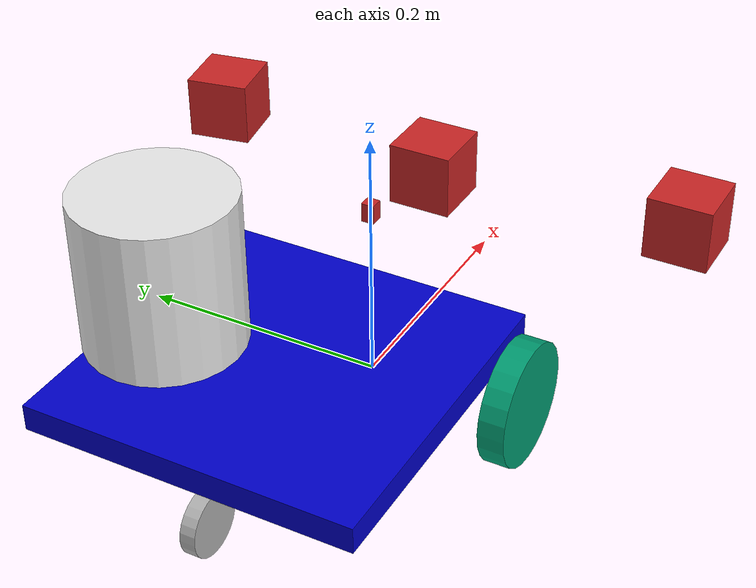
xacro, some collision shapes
<?xml version="1.0"?>

<robot  xmlns:xacro="http://ros.org/wiki/xacro"
        name="onebot" >

    <xacro:include filename="$(find onebot_description)/urdf/caster.urdf.xacro" />
    <xacro:include filename="$(find onebot_description)/urdf/wheel.urdf.xacro" />
    <xacro:include filename="$(find onebot_description)/urdf/materials.urdf.xacro" />
    <xacro:include filename="$(find onebot_description)/urdf/onebot.urdf.gazebo" />

    <xacro:arg name="mesh_enabled" default="false" />
    <xacro:arg name="robot_namespace" default="/"/>
    <xacro:property name="camera_link" value="0.05" /> <!-- Size of square 'camera' box -->
        <xacro:property name="mono_cam_y_pos" value="0.2" />
<xacro:property name="mono_cam_x_pos" value="0.12" />

    <link   name = "base_link">
        <inertial>
            <origin xyz="-0.108 0 -0.02579" rpy="0 0 0"/>
            <mass value="3.978"/>
            <inertia ixx="0.021858680" ixy="0.0" ixz="0.010020353"
                    iyy="0.078572349" iyz="-0.0"
                    izz="0.091971324"/>
        </inertial>
        <visual>
            <xacro:if value="$(arg mesh_enabled)">
                <origin xyz="0 0 0" rpy="0 0 0" />
                <geometry>
                    <mesh filename="package://onebot_description/meshes/base_link.dae" />
                </geometry>
            </xacro:if>
            <xacro:unless value="$(arg mesh_enabled)">
                <origin xyz="-0.125 0 -0.01" rpy="0 0 0" />
                <geometry>
                    <box size="0.25 0.25 0.02" />
                </geometry>
                <material name="Blue" />
            </xacro:unless>
        </visual>
        <collision>
            <origin xyz="-0.125 0 -0.01" rpy="0 0 0" />
            <geometry>
                <box size="0.25 0.25 0.02" />
            </geometry>
            <material name="Blue" />
        </collision>
    </link>

    <link   name =  "base_footprint"/>

<!-- Camera Joint Left -->
  <joint name="camera_left_joint" type="fixed">
    <axis xyz="0 1 0" />
    <origin xyz="${mono_cam_x_pos} -${mono_cam_y_pos} 0.035" rpy="0 0 0"/>
    <parent link="base_link"/>
    <child link="camera_left_link"/>
  </joint>

  <link name="sensor_laser">
    <inertial>
        <origin xyz="0 0.6 1.2" rpy="0 0 0" />
        <mass value="0.001" />
        <inertia  ixx="${0.001*(3*0.04*0.04+0.1*0.1)/12}" ixy = "0" ixz = "0"
            iyy="${0.001*(3*0.04*0.04+0.1*0.1)/12}" iyz = "0"
            izz="${0.001*(0.04*0.04)/2}" />
    </inertial>

    <visual>
        <origin xyz="0 0 0" rpy="0 0 0" />
        <geometry>
        <cylinder radius="0.05" length="0.1"/>
        </geometry>
        <material name="white" />
    </visual>

    <collision>
        <origin xyz="0 0 0" rpy="0 0 0"/>
        <geometry>
        <cylinder radius="0.05" length="0.1"/>
        </geometry>
    </collision>
    </link>

    <joint name="joint_sensor_laser" type="fixed">
    <origin xyz="-0.25 0 0.151" rpy="0 0 0"/>
    <parent link="base_link"/>
    <child link="sensor_laser"/>
  </joint>

  <!-- Camera Left -->
  <link name="camera_left_link">
    <collision>
      <origin xyz="0 0 0" rpy="0 0 0"/>
      <geometry>
    <box size="${camera_link} ${camera_link} ${camera_link}"/>
      </geometry>
    </collision>

    <visual>
      <origin xyz="0 0 0" rpy="0 0 0"/>
      <geometry>
    <box size="${camera_link} ${camera_link} ${camera_link}"/>
      </geometry>
      <material name="red"/>
    </visual>

    <inertial>
      <mass value="1e-5" />
      <origin xyz="0 0 0" rpy="0 0 0"/>
      <inertia ixx="1e-6" ixy="0" ixz="0" iyy="1e-6" iyz="0" izz="1e-6" />
    </inertial>
  </link>

<!-- Camera Joint Right -->
  <joint name="camera_right_joint" type="fixed">
    <axis xyz="0 1 0" />
    <origin xyz="${mono_cam_x_pos} ${mono_cam_y_pos} 0.035" rpy="0 0 1.75"/>
    <parent link="base_link"/>
    <child link="camera_right_link"/>
  </joint>

  <!-- Camera Right -->
  <link name="camera_right_link">
    <collision>
      <origin xyz="0 0 0" rpy="0 0 0"/>
      <geometry>
    <box size="${camera_link} ${camera_link} ${camera_link}"/>
      </geometry>
    </collision>

    <visual>
      <origin xyz="0 0 0" rpy="0 0 0"/>
      <geometry>
    <box size="${camera_link} ${camera_link} ${camera_link}"/>
      </geometry>
      <material name="red"/>
    </visual>

    <inertial>
      <mass value="1e-5" />
      <origin xyz="0 0 0" rpy="0 0 0"/>
      <inertia ixx="1e-6" ixy="0" ixz="0" iyy="1e-6" iyz="0" izz="1e-6" />
    </inertial>
  </link>

  <!-- Stereo Camera Joint -->
  <joint name="stereo_camera_joint" type="fixed">
    <axis xyz="0 1 0" />
    <origin xyz="0.1 0 0.035" rpy="0 0 0"/>
    <parent link="base_link"/>
    <child link="stereo_camera_link"/>
  </joint>

  <!-- Stereo Camera -->
  <link name="stereo_camera_link">
    <collision>
      <origin xyz="0 0 0" rpy="0 0 0"/>
      <geometry>
    <box size="${camera_link} ${camera_link} ${camera_link}"/>
      </geometry>
    </collision>

    <visual>
      <origin xyz="0 0 0" rpy="0 0 0"/>
      <geometry>
    <box size="${camera_link} ${camera_link} ${camera_link}"/>
      </geometry>
      <material name="red"/>
    </visual>

    <inertial>
      <mass value="1e-5" />
      <origin xyz="0 0 0" rpy="0 0 0"/>
      <inertia ixx="1e-6" ixy="0" ixz="0" iyy="1e-6" iyz="0" izz="1e-6" />
    </inertial>
  </link>

    <!-- IMU Joint -->
  <joint name="imu_joint" type="fixed">
    <axis xyz="0 1 0" />
    <origin xyz="0 0 0.05" rpy="0 0 0"/>
    <parent link="base_link"/>
    <child link="imu_link"/>
  </joint>

  <!-- IMU -->
  <link name="imu_link">
    <collision>
      <origin xyz="0 0 0" rpy="0 0 0"/>
      <geometry>
    <box size="0.01 0.01 0.015"/>
      </geometry>
    </collision>

    <visual>
      <origin xyz="0 0 0" rpy="0 0 0"/>
      <geometry>
    <box size="0.01 0.01 0.015"/>
      </geometry>
      <material name="red"/>
    </visual>

    <inertial>
      <mass value="1e-5" />
      <origin xyz="0 0 0" rpy="0 0 0"/>
      <inertia ixx="1e-6" ixy="0" ixz="0" iyy="1e-6" iyz="0" izz="1e-6" />
    </inertial>
  </link>

    <joint name = "base_joint"  type = "fixed">
        <parent link="base_footprint"/>
        <child link="base_link"/>
        <origin xyz="0.0 0.0 0.09188" rpy="0 0 0" />
        <axis xyz="0 1 0" rpy="0 0 0" />
    </joint>

    <xacro:caster caster_prefix="rear" parent_link="base_link" >
        <origin xyz="-0.20 0.0 -0.02533" rpy="0 0 0" />
    </xacro:caster>

    <xacro:wheel wheel_prefix="left" parent_link="base_link" >
        <origin xyz="-0.04 0.14 -0.045" rpy="0 0 0" />
    </xacro:wheel>

    <xacro:wheel wheel_prefix="right" parent_link="base_link" >
        <origin xyz="-0.04 -0.14 -0.045" rpy="0 0 0" />
    </xacro:wheel>

    <!-- add Gazebo plugins including sensor, control plugins -->
    <gazebo>
        <plugin name="gazebo_ros_control" filename="libgazebo_ros_control.so">
        <robotNamespace>$(arg robot_namespace)</robotNamespace>
        <legacyModeNS>true</legacyModeNS>
        </plugin>
    </gazebo>

</robot>

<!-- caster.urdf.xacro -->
<robot xmlns:xacro="http://ros.org/wiki/xacro" >

	<!-- Caster Dimensions -->
	<!-- These Dimensions are directly taken from the Solidworks model-->
    <xacro:property name="caster_wheel_length" value="0.02333" />
    <xacro:property name="caster_wheel_radius" value="0.024165" />
    <xacro:property name="caster_base_length" value="0.015" />
    <xacro:property name="caster_base_radius" value="0.015" />
    <xacro:property name="caster_base_joint_x" value="-0.02626" />
    <xacro:property name="caster_base_joint_z" value="-0.042385" />
    <xacro:property name="caster_base_link_z" value="-0.05615" />
    <xacro:property name="M_PI" value="3.14" />

	<xacro:property name="wheel_kp" value="600000" />
    <xacro:property name="wheel_kd" value="3" />
    <xacro:property name="wheel_mu1" value="10000000" />
    <xacro:property name="wheel_mu2" value="10000000" />

	<xacro:macro name="caster" params="caster_prefix parent_link *joint_pose">
		<!-- Caster Wheel Link -->
		<link name="${caster_prefix}_caster_link">
			<!--  These values are taken from the mass properties tool of Solidworks			 -->
			<inertial>
				<mass value="0.03837" />
				<origin xyz="0 0 0" />
				<inertia  ixx="0.000008221" ixy="0" ixz="0" iyy="0.000013003" iyz="0" izz="0.000008221" />
			</inertial>
			<!-- Here we included visual mesh generated from Blender as
  				 the visual geometry of the caster wheel link-->
			<visual>
                <origin xyz="0 0 0" rpy="${M_PI/2} 0 0" />
				<geometry>
					<mesh filename="package://onebot_description/meshes/caswheel.dae" />
				</geometry>
			</visual>
			<!--  A simplified cylinder is used as the collision geometry -->
			<collision>
				<origin xyz="0 0 0" rpy="${M_PI/2} 0 0" />
				<geometry>
					<cylinder length="${caster_wheel_length/2}" radius="${caster_wheel_radius}" />
				</geometry>
			</collision>
		</link>

		<!-- Caster Base Link -->
        <link name="${caster_prefix}_caster_base">
			<inertial>
				<mass value="0.06597" />
				<origin xyz="-0.01204 0 -0.01454" />
				<inertia  ixx="0.000039912" ixy="0" ixz="0.000017794" iyy="0.000050728" iyz="0" izz="0.000035261" />
			</inertial>
			<visual>
				<!-- Here the xacro arguments have been used. If the argument is true the visual mesh is used as
	 				 the visual geometry otherwise a simple cylinder is used as the visual geometry-->
				<xacro:if value="$(arg mesh_enabled)">
					<origin xyz="0 0 0" rpy="0 0 0" />
					<geometry>
						<mesh filename="package://onebot_description/meshes/caster_base2.dae" />
					</geometry>
				</xacro:if>
				<xacro:unless value="$(arg mesh_enabled)">
					<origin xyz="0 0 ${-caster_base_length/2}" rpy="0 0 0" />
					<geometry>
						<cylinder length="${caster_base_length}" radius="${caster_base_radius}" />
					</geometry>
				</xacro:unless>
			</visual>
			<collision>
				<origin xyz="0 0 ${-caster_base_length/2}" rpy="0 0 0" />
				<geometry>
					<cylinder length="${caster_base_length}" radius="${caster_base_radius}" />
				</geometry>
			</collision>
		</link>

		<!-- Caster Base Link and Wheel Link Joint
			 This joint is defined as a continuous type which enables the continuous movement in the joint. -->
        <joint name="${caster_prefix}_cwheel" type="continuous">
			<parent link="${caster_prefix}_caster_base"/>
			<child link="${caster_prefix}_caster_link"/>
			<origin xyz="${caster_base_joint_x} 0 ${caster_base_joint_z}" rpy="0 0 0" />
			<axis xyz="0 1 0" rpy="0 0 0" />
		</joint>

		<!-- Caster base and parent joint
			 This joint is also defined as continuous. A friction tag is added to model the friction
			 in the actual casters. Change the values and find which suits the best-->
		<joint name="${caster_prefix}_caster" type="continuous">
			<parent link="${parent_link}"/>
			<child link="${caster_prefix}_caster_base"/>
			<xacro:insert_block name="joint_pose"/>
			<axis xyz="0 0 1" rpy="0 0 0" />
			<dynamics friction="0.100" />
		</joint>

		<!-- The Gazebo physics engine ODE parameters are defined -->
		<gazebo reference="${caster_prefix}_caster_link">
			<mu1 value="${wheel_mu1}"/>
			<mu2 value="${wheel_mu2}"/>
			<kp>${wheel_kp}</kp>
    		<kd>${wheel_kd}</kd>
			<dampingFactor>0.05</dampingFactor>
			<fdir1 value="1 0 0"/>
		</gazebo>

        <gazebo reference="${caster_prefix}_caster_base">
			<mu1 value="${wheel_mu1}"/>
			<mu2 value="${wheel_mu2}"/>
			<kp>${wheel_kp}</kp>
    		<kd>${wheel_kd}</kd>
			<fdir1 value="1 0 0"/>
		</gazebo>

		<!-- A transmission tag is added to visualize the motion of the caster in Rviz through
			 the joint state controller -->
		<transmission name="${caster_prefix}_caster_trans" type="SimpleTransmission">
			<type>transmission_interface/SimpleTransmission</type>
			<actuator name="${caster_prefix}_caster_motor">
				<mechanicalReduction>1</mechanicalReduction>
			</actuator>
			<joint name="${caster_prefix}_caster">
				<hardwareInterface>hardware_interface/EffortJointInterface</hardwareInterface>
			</joint>
		</transmission>

		<transmission name="${caster_prefix}_casterbase_trans" type="SimpleTransmission">
			<type>transmission_interface/SimpleTransmission</type>
			<actuator name="${caster_prefix}_casterbase_motor">
				<mechanicalReduction>1</mechanicalReduction>
			</actuator>
			<joint name="${caster_prefix}_cwheel">
				<hardwareInterface>hardware_interface/EffortJointInterface</hardwareInterface>
			</joint>
		</transmission>

	</xacro:macro>

</robot>

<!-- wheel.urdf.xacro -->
<robot name="wheel" xmlns:xacro="http://ros.org/wiki/xacro" >

  	<xacro:property name="wheel_kp" value="600000" />
    <xacro:property name="wheel_kd" value="3" />
    <xacro:property name="wheel_mu1" value="10000000" />
    <xacro:property name="wheel_mu2" value="10000000" />

<xacro:macro name="wheel" params="wheel_prefix parent_link *joint_pose">

		<!-- Wheel Link -->
		<link name="${wheel_prefix}_wheel_link">
			<inertial>
				<mass value="0.144" />
				<origin xyz="0 0 0" />
				<inertia  ixx="0.00008929863" ixy="0" ixz="0" iyy="0.000168983" iyz="0" izz="0.00008929863" />
			</inertial>
			<visual>
				<xacro:if value="$(arg mesh_enabled)">
					<origin xyz="0 0 0" rpy="0 0 ${M_PI/2}" />
					<geometry>
						<mesh filename="package://onebot_description/meshes/wheel.dae" />
					</geometry>
				</xacro:if>
				<xacro:unless value="$(arg mesh_enabled)">
					<origin xyz="0 0 0" rpy="${M_PI/2} 0 0" />
					<geometry>
						<cylinder length="0.02" radius="0.04688" />
					</geometry>
				</xacro:unless>
			</visual>
			<collision>
				<origin xyz="0 0 0" rpy="${M_PI/2} 0 0" />
				<geometry>
						<cylinder length="0.02" radius="0.04688" />
				</geometry>
			</collision>
		</link>

		<!-- Wheel Joint -->
		<joint name="${wheel_prefix}_wheel" type="continuous">
			<parent link="${parent_link}"/>
			<child link="${wheel_prefix}_wheel_link"/>
			<xacro:insert_block name="joint_pose"/>
			<axis xyz="0 1 0" rpy="0 0 0" />
			<dynamics damping="0.5" friction="100.0" />
		</joint>

		<gazebo reference="${wheel_prefix}_wheel_link">
			<mu1 value="${wheel_mu1}"/>
			<mu2 value="${wheel_mu2}"/>
			<kp>${wheel_kp}</kp>
    		<kd>${wheel_kd}</kd>
			<dampingFactor>0.05</dampingFactor>
			<fdir1 value="1 0 0"/>
		</gazebo>

		<transmission name="${wheel_prefix}_wheel_trans" type="SimpleTransmission">
			<type>transmission_interface/SimpleTransmission</type>
			<actuator name="${wheel_prefix}_wheel_motor">
				<mechanicalReduction>1</mechanicalReduction>
			</actuator>
			<joint name="${wheel_prefix}_wheel">
				<hardwareInterface>hardware_interface/VelocityJointInterface</hardwareInterface>
			</joint>
		</transmission>

</xacro:macro>

</robot>

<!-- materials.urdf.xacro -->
<robot>
  <material name="Blue">
    <color rgba="0.0 0.0 0.8 1.0"/>
  </material>

  <material name="Green">
    <color rgba="0.0 0.8 0.0 1.0"/>
  </material>

  <material name="Grey">
    <color rgba="0.7 0.7 0.7 1.0"/>
  </material>

  <material name="LightGrey">
    <color rgba="0.9 0.9 0.9 1.0"/>
  </material>

 <material name="DarkGrey">
   <color rgba="0.1 0.1 0.1 1.0"/>
 </material>

  <material name="Red">
    <color rgba="0.8 0.0 0.0 1.0"/>
  </material>

  <material name="White">
    <color rgba="1.0 1.0 1.0 1.0"/>
  </material>

  <material name="Yellow">
    <color rgba="0.96 0.88 0.14 1.0"/>
  </material>
</robot>
